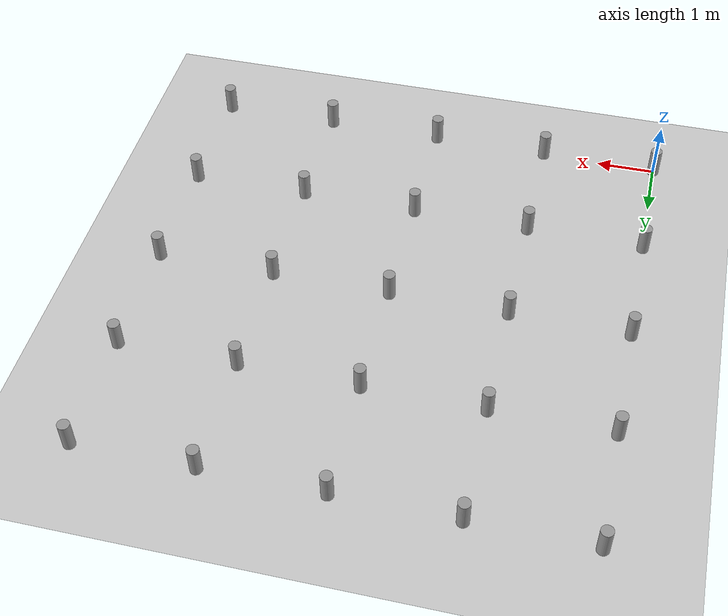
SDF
<sdf version="1.5">
 <world name="default">
  <model name="ground_plane">
   <static>1</static>
   <link name="link">
    <collision name="collision">
     <geometry><plane><normal>0 0 1</normal><size>100 100</size></plane></geometry>
     <surface><friction><ode><mu>100</mu><mu2>50</mu2></ode></friction></surface>
    </collision>
    <visual name="visual">
     <cast_shadows>0</cast_shadows>
     <geometry><plane><normal>0 0 1</normal><size>100 100</size></plane></geometry>
     <material>
      <script><uri>file://media/materials/scripts/gazebo.material</uri><name>Gazebo/Grey</name></script>
     </material>
    </visual>
   </link>
  </model>
  <model name="unit_cylinder_0_0">
   <pose>0 0 0 0 -0 1.7e-05</pose>
   <link name="link">
    <inertial>
     <mass>1</mass>
     <inertia><ixx>1</ixx><ixy>0</ixy><ixz>0</ixz><iyy>1</iyy><iyz>0</iyz><izz>1</izz></inertia>
    </inertial>
    <collision name="collision">
     <geometry><cylinder><radius>0.1</radius><length>1</length></cylinder></geometry>
    </collision>
    <visual name="visual">
     <geometry><cylinder><radius>0.1</radius><length>1</length></cylinder></geometry>
     <material>
      <script><uri>file://media/materials/scripts/gazebo.material</uri><name>Gazebo/Grey</name></script>
     </material>
    </visual>
   </link>
  </model>
  <model name="unit_cylinder_0_2">
   <pose>0 2 0 0 -0 1.7e-05</pose>
   <link name="link">
    <inertial>
     <mass>1</mass>
     <inertia><ixx>1</ixx><ixy>0</ixy><ixz>0</ixz><iyy>1</iyy><iyz>0</iyz><izz>1</izz></inertia>
    </inertial>
    <collision name="collision">
     <geometry><cylinder><radius>0.1</radius><length>1</length></cylinder></geometry>
    </collision>
    <visual name="visual">
     <geometry><cylinder><radius>0.1</radius><length>1</length></cylinder></geometry>
     <material>
      <script><uri>file://media/materials/scripts/gazebo.material</uri><name>Gazebo/Grey</name></script>
     </material>
    </visual>
   </link>
  </model>
  <model name="unit_cylinder_0_4">
   <pose>0 4 0 0 -0 1.7e-05</pose>
   <link name="link">
    <inertial>
     <mass>1</mass>
     <inertia><ixx>1</ixx><ixy>0</ixy><ixz>0</ixz><iyy>1</iyy><iyz>0</iyz><izz>1</izz></inertia>
    </inertial>
    <collision name="collision">
     <geometry><cylinder><radius>0.1</radius><length>1</length></cylinder></geometry>
    </collision>
    <visual name="visual">
     <geometry><cylinder><radius>0.1</radius><length>1</length></cylinder></geometry>
     <material>
      <script><uri>file://media/materials/scripts/gazebo.material</uri><name>Gazebo/Grey</name></script>
     </material>
    </visual>
   </link>
  </model>
  <model name="unit_cylinder_0_6">
   <pose>0 6 0 0 -0 1.7e-05</pose>
   <link name="link">
    <inertial>
     <mass>1</mass>
     <inertia><ixx>1</ixx><ixy>0</ixy><ixz>0</ixz><iyy>1</iyy><iyz>0</iyz><izz>1</izz></inertia>
    </inertial>
    <collision name="collision">
     <geometry><cylinder><radius>0.1</radius><length>1</length></cylinder></geometry>
    </collision>
    <visual name="visual">
     <geometry><cylinder><radius>0.1</radius><length>1</length></cylinder></geometry>
     <material>
      <script><uri>file://media/materials/scripts/gazebo.material</uri><name>Gazebo/Grey</name></script>
     </material>
    </visual>
   </link>
  </model>
  <model name="unit_cylinder_0_8">
   <pose>0 8 0 0 -0 1.7e-05</pose>
   <link name="link">
    <inertial>
     <mass>1</mass>
     <inertia><ixx>1</ixx><ixy>0</ixy><ixz>0</ixz><iyy>1</iyy><iyz>0</iyz><izz>1</izz></inertia>
    </inertial>
    <collision name="collision">
     <geometry><cylinder><radius>0.1</radius><length>1</length></cylinder></geometry>
    </collision>
    <visual name="visual">
     <geometry><cylinder><radius>0.1</radius><length>1</length></cylinder></geometry>
     <material>
      <script><uri>file://media/materials/scripts/gazebo.material</uri><name>Gazebo/Grey</name></script>
     </material>
    </visual>
   </link>
  </model>
  <model name="unit_cylinder_2_0">
   <pose>2 0 0 0 -0 1.7e-05</pose>
   <link name="link">
    <inertial>
     <mass>1</mass>
     <inertia><ixx>1</ixx><ixy>0</ixy><ixz>0</ixz><iyy>1</iyy><iyz>0</iyz><izz>1</izz></inertia>
    </inertial>
    <collision name="collision">
     <geometry><cylinder><radius>0.1</radius><length>1</length></cylinder></geometry>
    </collision>
    <visual name="visual">
     <geometry><cylinder><radius>0.1</radius><length>1</length></cylinder></geometry>
     <material>
      <script><uri>file://media/materials/scripts/gazebo.material</uri><name>Gazebo/Grey</name></script>
     </material>
    </visual>
   </link>
  </model>
  <model name="unit_cylinder_2_2">
   <pose>2 2 0 0 -0 1.7e-05</pose>
   <link name="link">
    <inertial>
     <mass>1</mass>
     <inertia><ixx>1</ixx><ixy>0</ixy><ixz>0</ixz><iyy>1</iyy><iyz>0</iyz><izz>1</izz></inertia>
    </inertial>
    <collision name="collision">
     <geometry><cylinder><radius>0.1</radius><length>1</length></cylinder></geometry>
    </collision>
    <visual name="visual">
     <geometry><cylinder><radius>0.1</radius><length>1</length></cylinder></geometry>
     <material>
      <script><uri>file://media/materials/scripts/gazebo.material</uri><name>Gazebo/Grey</name></script>
     </material>
    </visual>
   </link>
  </model>
  <model name="unit_cylinder_2_4">
   <pose>2 4 0 0 -0 1.7e-05</pose>
   <link name="link">
    <inertial>
     <mass>1</mass>
     <inertia><ixx>1</ixx><ixy>0</ixy><ixz>0</ixz><iyy>1</iyy><iyz>0</iyz><izz>1</izz></inertia>
    </inertial>
    <collision name="collision">
     <geometry><cylinder><radius>0.1</radius><length>1</length></cylinder></geometry>
    </collision>
    <visual name="visual">
     <geometry><cylinder><radius>0.1</radius><length>1</length></cylinder></geometry>
     <material>
      <script><uri>file://media/materials/scripts/gazebo.material</uri><name>Gazebo/Grey</name></script>
     </material>
    </visual>
   </link>
  </model>
  <model name="unit_cylinder_2_6">
   <pose>2 6 0 0 -0 1.7e-05</pose>
   <link name="link">
    <inertial>
     <mass>1</mass>
     <inertia><ixx>1</ixx><ixy>0</ixy><ixz>0</ixz><iyy>1</iyy><iyz>0</iyz><izz>1</izz></inertia>
    </inertial>
    <collision name="collision">
     <geometry><cylinder><radius>0.1</radius><length>1</length></cylinder></geometry>
    </collision>
    <visual name="visual">
     <geometry><cylinder><radius>0.1</radius><length>1</length></cylinder></geometry>
     <material>
      <script><uri>file://media/materials/scripts/gazebo.material</uri><name>Gazebo/Grey</name></script>
     </material>
    </visual>
   </link>
  </model>
  <model name="unit_cylinder_2_8">
   <pose>2 8 0 0 -0 1.7e-05</pose>
   <link name="link">
    <inertial>
     <mass>1</mass>
     <inertia><ixx>1</ixx><ixy>0</ixy><ixz>0</ixz><iyy>1</iyy><iyz>0</iyz><izz>1</izz></inertia>
    </inertial>
    <collision name="collision">
     <geometry><cylinder><radius>0.1</radius><length>1</length></cylinder></geometry>
    </collision>
    <visual name="visual">
     <geometry><cylinder><radius>0.1</radius><length>1</length></cylinder></geometry>
     <material>
      <script><uri>file://media/materials/scripts/gazebo.material</uri><name>Gazebo/Grey</name></script>
     </material>
    </visual>
   </link>
  </model>
  <model name="unit_cylinder_4_0">
   <pose>4 0 0 0 -0 1.7e-05</pose>
   <link name="link">
    <inertial>
     <mass>1</mass>
     <inertia><ixx>1</ixx><ixy>0</ixy><ixz>0</ixz><iyy>1</iyy><iyz>0</iyz><izz>1</izz></inertia>
    </inertial>
    <collision name="collision">
     <geometry><cylinder><radius>0.1</radius><length>1</length></cylinder></geometry>
    </collision>
    <visual name="visual">
     <geometry><cylinder><radius>0.1</radius><length>1</length></cylinder></geometry>
     <material>
      <script><uri>file://media/materials/scripts/gazebo.material</uri><name>Gazebo/Grey</name></script>
     </material>
    </visual>
   </link>
  </model>
  <model name="unit_cylinder_4_2">
   <pose>4 2 0 0 -0 1.7e-05</pose>
   <link name="link">
    <inertial>
     <mass>1</mass>
     <inertia><ixx>1</ixx><ixy>0</ixy><ixz>0</ixz><iyy>1</iyy><iyz>0</iyz><izz>1</izz></inertia>
    </inertial>
    <collision name="collision">
     <geometry><cylinder><radius>0.1</radius><length>1</length></cylinder></geometry>
    </collision>
    <visual name="visual">
     <geometry><cylinder><radius>0.1</radius><length>1</length></cylinder></geometry>
     <material>
      <script><uri>file://media/materials/scripts/gazebo.material</uri><name>Gazebo/Grey</name></script>
     </material>
    </visual>
   </link>
  </model>
  <model name="unit_cylinder_4_4">
   <pose>4 4 0 0 -0 1.7e-05</pose>
   <link name="link">
    <inertial>
     <mass>1</mass>
     <inertia><ixx>1</ixx><ixy>0</ixy><ixz>0</ixz><iyy>1</iyy><iyz>0</iyz><izz>1</izz></inertia>
    </inertial>
    <collision name="collision">
     <geometry><cylinder><radius>0.1</radius><length>1</length></cylinder></geometry>
    </collision>
    <visual name="visual">
     <geometry><cylinder><radius>0.1</radius><length>1</length></cylinder></geometry>
     <material>
      <script><uri>file://media/materials/scripts/gazebo.material</uri><name>Gazebo/Grey</name></script>
     </material>
    </visual>
   </link>
  </model>
  <model name="unit_cylinder_4_6">
   <pose>4 6 0 0 -0 1.7e-05</pose>
   <link name="link">
    <inertial>
     <mass>1</mass>
     <inertia><ixx>1</ixx><ixy>0</ixy><ixz>0</ixz><iyy>1</iyy><iyz>0</iyz><izz>1</izz></inertia>
    </inertial>
    <collision name="collision">
     <geometry><cylinder><radius>0.1</radius><length>1</length></cylinder></geometry>
    </collision>
    <visual name="visual">
     <geometry><cylinder><radius>0.1</radius><length>1</length></cylinder></geometry>
     <material>
      <script><uri>file://media/materials/scripts/gazebo.material</uri><name>Gazebo/Grey</name></script>
     </material>
    </visual>
   </link>
  </model>
  <model name="unit_cylinder_4_8">
   <pose>4 8 0 0 -0 1.7e-05</pose>
   <link name="link">
    <inertial>
     <mass>1</mass>
     <inertia><ixx>1</ixx><ixy>0</ixy><ixz>0</ixz><iyy>1</iyy><iyz>0</iyz><izz>1</izz></inertia>
    </inertial>
    <collision name="collision">
     <geometry><cylinder><radius>0.1</radius><length>1</length></cylinder></geometry>
    </collision>
    <visual name="visual">
     <geometry><cylinder><radius>0.1</radius><length>1</length></cylinder></geometry>
     <material>
      <script><uri>file://media/materials/scripts/gazebo.material</uri><name>Gazebo/Grey</name></script>
     </material>
    </visual>
   </link>
  </model>
  <model name="unit_cylinder_6_0">
   <pose>6 0 0 0 -0 1.7e-05</pose>
   <link name="link">
    <inertial>
     <mass>1</mass>
     <inertia><ixx>1</ixx><ixy>0</ixy><ixz>0</ixz><iyy>1</iyy><iyz>0</iyz><izz>1</izz></inertia>
    </inertial>
    <collision name="collision">
     <geometry><cylinder><radius>0.1</radius><length>1</length></cylinder></geometry>
    </collision>
    <visual name="visual">
     <geometry><cylinder><radius>0.1</radius><length>1</length></cylinder></geometry>
     <material>
      <script><uri>file://media/materials/scripts/gazebo.material</uri><name>Gazebo/Grey</name></script>
     </material>
    </visual>
   </link>
  </model>
  <model name="unit_cylinder_6_2">
   <pose>6 2 0 0 -0 1.7e-05</pose>
   <link name="link">
    <inertial>
     <mass>1</mass>
     <inertia><ixx>1</ixx><ixy>0</ixy><ixz>0</ixz><iyy>1</iyy><iyz>0</iyz><izz>1</izz></inertia>
    </inertial>
    <collision name="collision">
     <geometry><cylinder><radius>0.1</radius><length>1</length></cylinder></geometry>
    </collision>
    <visual name="visual">
     <geometry><cylinder><radius>0.1</radius><length>1</length></cylinder></geometry>
     <material>
      <script><uri>file://media/materials/scripts/gazebo.material</uri><name>Gazebo/Grey</name></script>
     </material>
    </visual>
   </link>
  </model>
  <model name="unit_cylinder_6_4">
   <pose>6 4 0 0 -0 1.7e-05</pose>
   <link name="link">
    <inertial>
     <mass>1</mass>
     <inertia><ixx>1</ixx><ixy>0</ixy><ixz>0</ixz><iyy>1</iyy><iyz>0</iyz><izz>1</izz></inertia>
    </inertial>
    <collision name="collision">
     <geometry><cylinder><radius>0.1</radius><length>1</length></cylinder></geometry>
    </collision>
    <visual name="visual">
     <geometry><cylinder><radius>0.1</radius><length>1</length></cylinder></geometry>
     <material>
      <script><uri>file://media/materials/scripts/gazebo.material</uri><name>Gazebo/Grey</name></script>
     </material>
    </visual>
   </link>
  </model>
  <model name="unit_cylinder_6_6">
   <pose>6 6 0 0 -0 1.7e-05</pose>
   <link name="link">
    <inertial>
     <mass>1</mass>
     <inertia><ixx>1</ixx><ixy>0</ixy><ixz>0</ixz><iyy>1</iyy><iyz>0</iyz><izz>1</izz></inertia>
    </inertial>
    <collision name="collision">
     <geometry><cylinder><radius>0.1</radius><length>1</length></cylinder></geometry>
    </collision>
    <visual name="visual">
     <geometry><cylinder><radius>0.1</radius><length>1</length></cylinder></geometry>
     <material>
      <script><uri>file://media/materials/scripts/gazebo.material</uri><name>Gazebo/Grey</name></script>
     </material>
    </visual>
   </link>
  </model>
  <model name="unit_cylinder_6_8">
   <pose>6 8 0 0 -0 1.7e-05</pose>
   <link name="link">
    <inertial>
     <mass>1</mass>
     <inertia><ixx>1</ixx><ixy>0</ixy><ixz>0</ixz><iyy>1</iyy><iyz>0</iyz><izz>1</izz></inertia>
    </inertial>
    <collision name="collision">
     <geometry><cylinder><radius>0.1</radius><length>1</length></cylinder></geometry>
    </collision>
    <visual name="visual">
     <geometry><cylinder><radius>0.1</radius><length>1</length></cylinder></geometry>
     <material>
      <script><uri>file://media/materials/scripts/gazebo.material</uri><name>Gazebo/Grey</name></script>
     </material>
    </visual>
   </link>
  </model>
  <model name="unit_cylinder_8_0">
   <pose>8 0 0 0 -0 1.7e-05</pose>
   <link name="link">
    <inertial>
     <mass>1</mass>
     <inertia><ixx>1</ixx><ixy>0</ixy><ixz>0</ixz><iyy>1</iyy><iyz>0</iyz><izz>1</izz></inertia>
    </inertial>
    <collision name="collision">
     <geometry><cylinder><radius>0.1</radius><length>1</length></cylinder></geometry>
    </collision>
    <visual name="visual">
     <geometry><cylinder><radius>0.1</radius><length>1</length></cylinder></geometry>
     <material>
      <script><uri>file://media/materials/scripts/gazebo.material</uri><name>Gazebo/Grey</name></script>
     </material>
    </visual>
   </link>
  </model>
  <model name="unit_cylinder_8_2">
   <pose>8 2 0 0 -0 1.7e-05</pose>
   <link name="link">
    <inertial>
     <mass>1</mass>
     <inertia><ixx>1</ixx><ixy>0</ixy><ixz>0</ixz><iyy>1</iyy><iyz>0</iyz><izz>1</izz></inertia>
    </inertial>
    <collision name="collision">
     <geometry><cylinder><radius>0.1</radius><length>1</length></cylinder></geometry>
    </collision>
    <visual name="visual">
     <geometry><cylinder><radius>0.1</radius><length>1</length></cylinder></geometry>
     <material>
      <script><uri>file://media/materials/scripts/gazebo.material</uri><name>Gazebo/Grey</name></script>
     </material>
    </visual>
   </link>
  </model>
  <model name="unit_cylinder_8_4">
   <pose>8 4 0 0 -0 1.7e-05</pose>
   <link name="link">
    <inertial>
     <mass>1</mass>
     <inertia><ixx>1</ixx><ixy>0</ixy><ixz>0</ixz><iyy>1</iyy><iyz>0</iyz><izz>1</izz></inertia>
    </inertial>
    <collision name="collision">
     <geometry><cylinder><radius>0.1</radius><length>1</length></cylinder></geometry>
    </collision>
    <visual name="visual">
     <geometry><cylinder><radius>0.1</radius><length>1</length></cylinder></geometry>
     <material>
      <script><uri>file://media/materials/scripts/gazebo.material</uri><name>Gazebo/Grey</name></script>
     </material>
    </visual>
   </link>
  </model>
  <model name="unit_cylinder_8_6">
   <pose>8 6 0 0 -0 1.7e-05</pose>
   <link name="link">
    <inertial>
     <mass>1</mass>
     <inertia><ixx>1</ixx><ixy>0</ixy><ixz>0</ixz><iyy>1</iyy><iyz>0</iyz><izz>1</izz></inertia>
    </inertial>
    <collision name="collision">
     <geometry><cylinder><radius>0.1</radius><length>1</length></cylinder></geometry>
    </collision>
    <visual name="visual">
     <geometry><cylinder><radius>0.1</radius><length>1</length></cylinder></geometry>
     <material>
      <script><uri>file://media/materials/scripts/gazebo.material</uri><name>Gazebo/Grey</name></script>
     </material>
    </visual>
   </link>
  </model>
  <model name="unit_cylinder_8_8">
   <pose>8 8 0 0 -0 1.7e-05</pose>
   <link name="link">
    <inertial>
     <mass>1</mass>
     <inertia><ixx>1</ixx><ixy>0</ixy><ixz>0</ixz><iyy>1</iyy><iyz>0</iyz><izz>1</izz></inertia>
    </inertial>
    <collision name="collision">
     <geometry><cylinder><radius>0.1</radius><length>1</length></cylinder></geometry>
    </collision>
    <visual name="visual">
     <geometry><cylinder><radius>0.1</radius><length>1</length></cylinder></geometry>
     <material>
      <script><uri>file://media/materials/scripts/gazebo.material</uri><name>Gazebo/Grey</name></script>
     </material>
    </visual>
   </link>
  </model>
 </world>
</sdf>
